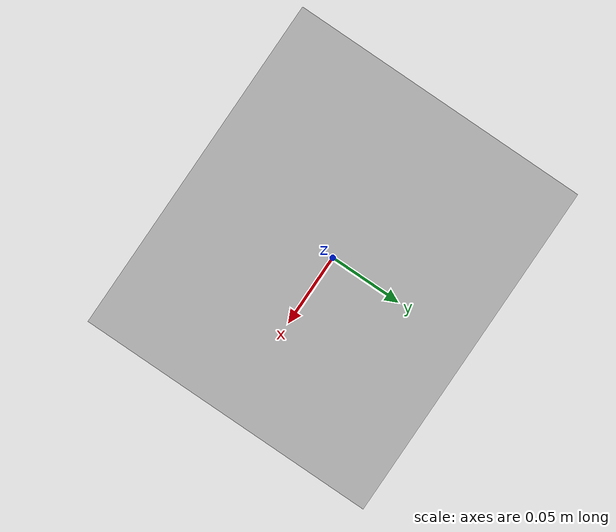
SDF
<?xml version="1.0" ?>
<sdf version="1.4">
  <model name="marker_checkerboard_7x8_30mm">
    <static>0</static>
    <link name="marker">
      <inertial>
        <mass>0.1</mass>
        <inertia>
          <ixx>0.000000</ixx>
          <ixy>0.000000</ixy>
          <ixz>0.000000</ixz>
          <iyy>0.000000</iyy>
          <iyz>0.000000</iyz>
          <izz>0.000000</izz>
        </inertia>
      </inertial>
      <visual name="visual">
        <geometry>
          <box>
            <size>0.24 0.21 0.001</size>
            <!-- SIZE OF THE MARKER -->
          </box>
        </geometry>
        <material>
          <script>
	    <uri>model://marker_checkerboard_7x8_30mm/material/scripts</uri>
	    <uri>model://marker_checkerboard_7x8_30mm/material/textures</uri>
            <name>checkerboard/marker_checkerboard_7x8_30mm</name>
          </script>
        </material>
      </visual>
      <collision name="collision">
        <geometry>
          <box>
            <size>0.24 0.21 0.02</size>
            <!-- SIZE OF THE MARKER -->
          </box>
        </geometry>
        <surface>
          <bounce />
          <friction>
            <ode />
          </friction>
          <contact>
            <ode />
          </contact>
        </surface>
      </collision>
      <self_collide>1</self_collide>
      <kinematic>0</kinematic>
      <gravity>1</gravity>
    </link>
  </model>
</sdf>
